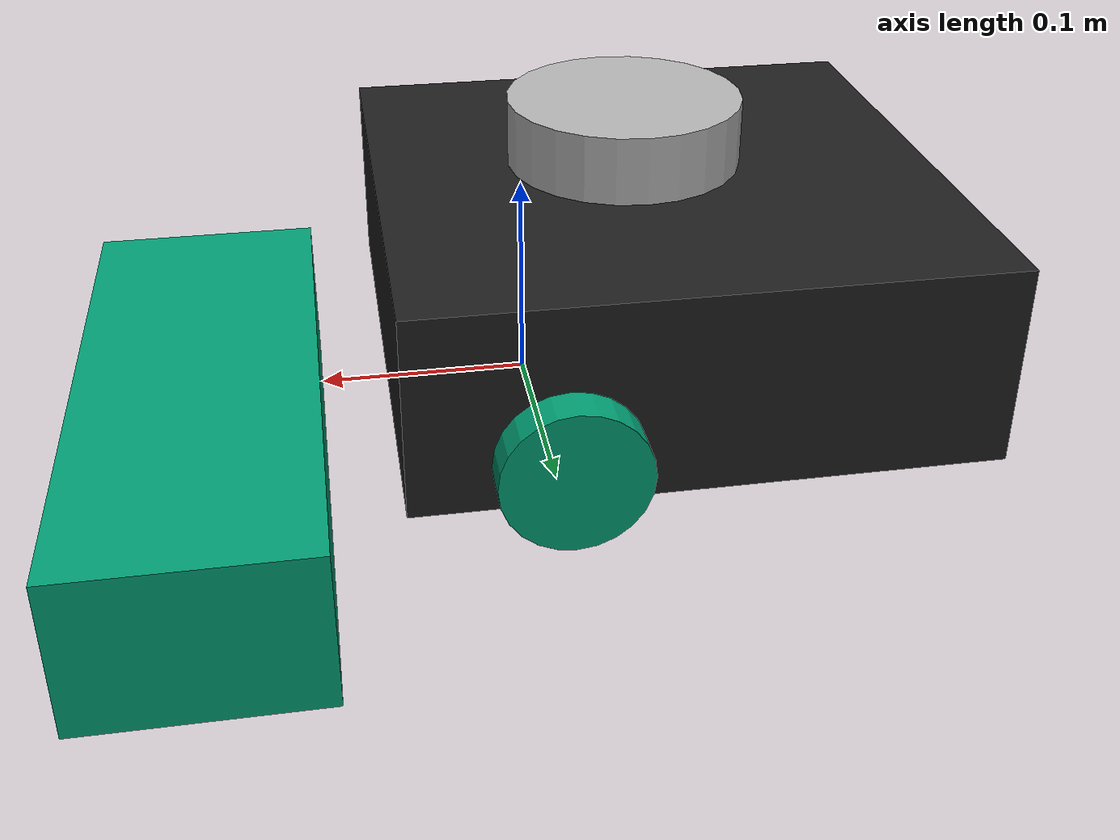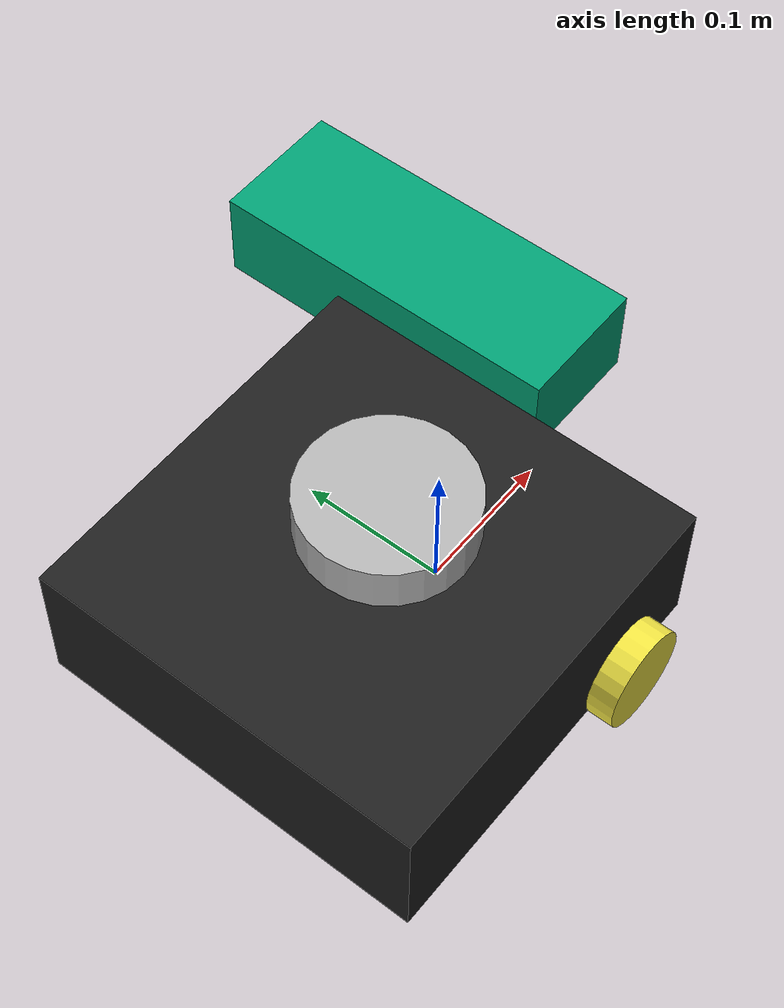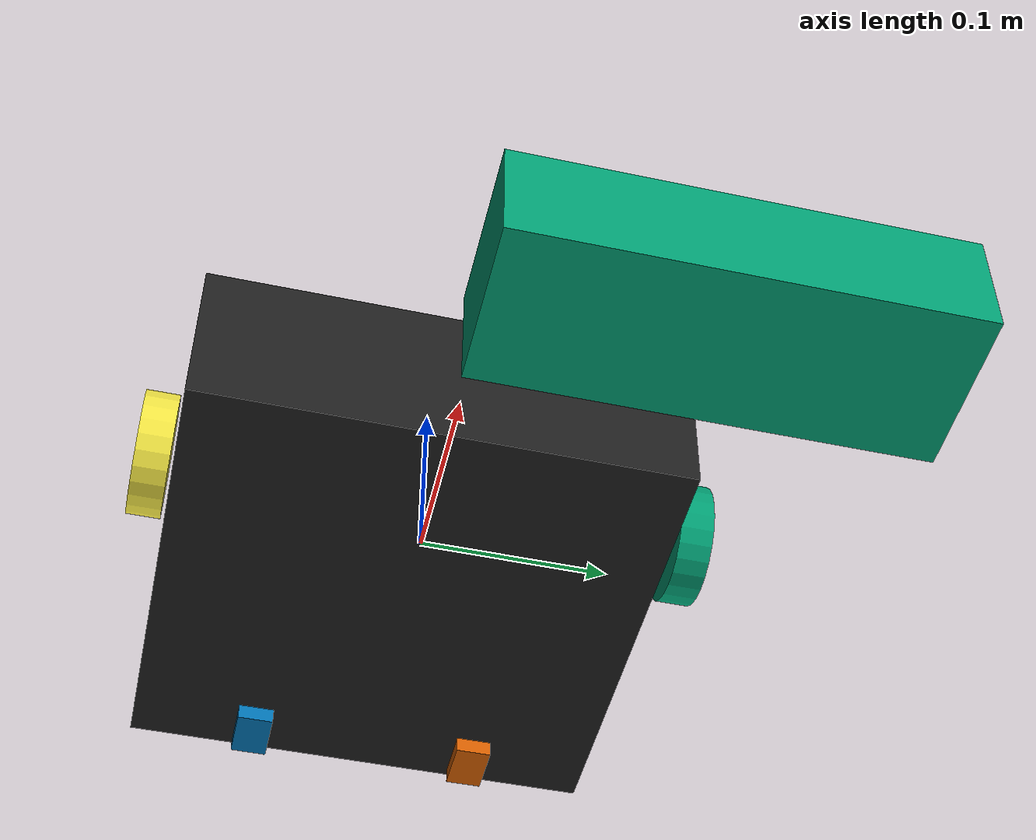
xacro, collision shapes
<?xml version="1.0" ?>
<robot name="turtlebot3_waffle_pi" xmlns:xacro="http://ros.org/wiki/xacro">
  <xacro:include filename="$(find turtlebot3_description)/urdf/common_properties.xacro"/>
  <xacro:include filename="$(find turtlebot3_description)/urdf/turtlebot3_waffle_pi.gazebo.xacro"/>

  <link name="base_footprint"/>

  <joint name="base_joint" type="fixed">
    <parent link="base_footprint"/>
    <child link="base_link" />
    <origin xyz="0 0 0.010" rpy="0 0 0"/>
  </joint>

  <link name="base_link">
    <visual>
      <origin xyz="-0.064 0 0.0" rpy="0 0 0"/>
      <geometry>
        <mesh filename="package://turtlebot3_description/meshes/bases/waffle_pi_base.stl" scale="0.001 0.001 0.001"/>
      </geometry>
      <material name="light_black"/>
    </visual>

    <collision>
      <origin xyz="-0.064 0 0.047" rpy="0 0 0"/>
      <geometry>
        <box size="0.266 0.266 0.094"/>
      </geometry>
    </collision>

    <inertial>
      <origin xyz="0 0 0" rpy="0 0 0"/>
      <mass value="1.3729096e+00"/>
      <inertia ixx="8.7002718e-03" ixy="-4.7576583e-05" ixz="1.1160499e-04"
               iyy="8.6195418e-03" iyz="-3.5422299e-06"
               izz="1.4612727e-02" />
    </inertial>
  </link>

  <joint name="wheel_left_joint" type="continuous">
    <parent link="base_link"/>
    <child link="wheel_left_link"/>
    <origin xyz="0.0 0.144 0.023" rpy="-1.57 0 0"/>
    <axis xyz="0 0 1"/>
  </joint>

  <link name="wheel_left_link">
    <visual>
      <origin xyz="0 0 0" rpy="1.57 0 0"/>
      <geometry>
        <mesh filename="package://turtlebot3_description/meshes/wheels/left_tire.stl" scale="0.001 0.001 0.001"/>
      </geometry>
      <material name="dark"/>
    </visual>

    <collision>
      <origin xyz="0 0 0" rpy="0 0 0"/>
      <geometry>
        <cylinder length="0.018" radius="0.033"/>
      </geometry>
    </collision>

    <inertial>
      <origin xyz="0 0 0" />
      <mass value="2.8498940e-02" />
      <inertia ixx="1.1175580e-05" ixy="-4.2369783e-11" ixz="-5.9381719e-09"
               iyy="1.1192413e-05" iyz="-1.4400107e-11"
               izz="2.0712558e-05" />
      </inertial>
  </link>

  <joint name="wheel_right_joint" type="continuous">
    <parent link="base_link"/>
    <child link="wheel_right_link"/>
    <origin xyz="0.0 -0.144 0.023" rpy="-1.57 0 0"/>
    <axis xyz="0 0 1"/>
  </joint>

  <link name="wheel_right_link">
    <visual>
      <origin xyz="0 0 0" rpy="1.57 0 0"/>
      <geometry>
        <mesh filename="package://turtlebot3_description/meshes/wheels/right_tire.stl" scale="0.001 0.001 0.001"/>
      </geometry>
      <material name="dark"/>
    </visual>

    <collision>
      <origin xyz="0 0 0" rpy="0 0 0"/>
      <geometry>
        <cylinder length="0.018" radius="0.033"/>
      </geometry>
    </collision>

    <inertial>
      <origin xyz="0 0 0" />
      <mass value="2.8498940e-02" />
      <inertia ixx="1.1175580e-05" ixy="-4.2369783e-11" ixz="-5.9381719e-09"
               iyy="1.1192413e-05" iyz="-1.4400107e-11"
               izz="2.0712558e-05" />
      </inertial>
  </link>

  <joint name="caster_back_right_joint" type="fixed">
    <parent link="base_link"/>
    <child link="caster_back_right_link"/>
    <origin xyz="-0.177 -0.064 -0.004" rpy="-1.57 0 0"/>
  </joint>

  <link name="caster_back_right_link">
    <collision>
      <origin xyz="0 0.001 0" rpy="0 0 0"/>
      <geometry>
        <box size="0.030 0.009 0.020"/>
      </geometry>
    </collision>

    <inertial>
      <origin xyz="0 0 0" />
      <mass value="0.005" />
      <inertia ixx="0.001" ixy="0.0" ixz="0.0"
               iyy="0.001" iyz="0.0"
               izz="0.001" />
    </inertial>
  </link>

  <joint name="caster_back_left_joint" type="fixed">
    <parent link="base_link"/>
    <child link="caster_back_left_link"/>
    <origin xyz="-0.177 0.064 -0.004" rpy="-1.57 0 0"/>
  </joint>

  <link name="caster_back_left_link">
    <collision>
      <origin xyz="0 0.001 0" rpy="0 0 0"/>
      <geometry>
        <box size="0.030 0.009 0.020"/>
      </geometry>
    </collision>

    <inertial>
      <origin xyz="0 0 0" />
      <mass value="0.005" />
      <inertia ixx="0.001" ixy="0.0" ixz="0.0"
               iyy="0.001" iyz="0.0"
               izz="0.001" />
    </inertial>
  </link>

  <joint name="imu_joint" type="fixed">
    <parent link="base_link"/>
    <child link="imu_link"/>
    <origin xyz="0.0 0 0.068" rpy="0 0 0"/>
  </joint>

  <link name="imu_link"/>

  <joint name="scan_joint" type="fixed">
    <parent link="base_link"/>
    <child link="base_scan"/>
    <origin xyz="-0.064 0 0.122" rpy="0 0 0"/>
  </joint>

  <link name="base_scan">
    <visual>
      <origin xyz="0 0 0.0" rpy="0 0 0"/>
      <geometry>
        <mesh filename="package://turtlebot3_description/meshes/sensors/lds.stl" scale="0.001 0.001 0.001"/>
      </geometry>
      <material name="dark"/>
    </visual>

    <collision>
      <origin xyz="0.015 0 -0.0065" rpy="0 0 0"/>
      <geometry>
        <cylinder length="0.0315" radius="0.055"/>
      </geometry>
    </collision>

    <inertial>
      <mass value="0.114" />
      <origin xyz="0 0 0" />
      <inertia ixx="0.001" ixy="0.0" ixz="0.0"
               iyy="0.001" iyz="0.0"
               izz="0.001" />
    </inertial>
  </link>

<!-- KINECT V2 -->
  <joint name="kinect_rgb_joint" type="fixed">
          <origin xyz="0.3 0 0.3" rpy="0 0 0" />
            <parent link="kinect_link"/>
            <child link="kinect_rgb_frame" />
      </joint>

      <link name="kinect_rgb_frame">
            <inertial>
                <mass value="0.001" />
                <origin xyz="0 0 0" />
                <inertia ixx="0.0001" ixy="0.0" ixz="0.0" iyy="0.0001" iyz="0.0" izz="0.0001" />
            </inertial>
      </link>

      <joint name="kinect_rgb_optical_joint" type="fixed">
            <origin xyz="0 0 0" rpy="-1.570796326795 0 -1.570796326795" />
            <parent link="kinect_rgb_frame" />
            <child link="kinect_rgb_optical_frame" />
      </joint>

      <link name="kinect_rgb_optical_frame">
            <inertial>
                <mass value="0.001" />
                <origin xyz="0 0 0" />
                <inertia ixx="0.0001" ixy="0.0" ixz="0.0" iyy="0.0001" iyz="0.0" izz="0.0001" />
            </inertial>
      </link>

      <joint name="kinect_joint" type="fixed">
          <origin xyz="0.1 0.0 0.01" rpy="0 0 0"/>
          <parent link="base_link"/>
          <child link="kinect_link"/>
      </joint>

      <link name="kinect_link">
            <visual>
                <origin xyz="0 0 0" rpy="0 0 1.570796326795"/>
                <geometry>
                          <mesh filename="package://model_robot/meshes/sensors/kinectv2.dae"/>
                </geometry>
            </visual>
            <collision>

                      <origin xyz="0.0471 0.125 0.03225" rpy="0 0 0"/>
                      <geometry>
                          <box size="0.0943 0.25 0.0645"/>
                      </geometry>

            </collision>
            <inertial>
                <mass value="0.001" />
                <origin xyz="0 0 0" />
                <inertia ixx="0.0001" ixy="0.0" ixz="0.0" iyy="0.0001" iyz="0.0" izz="0.0001" />
            </inertial>
      </link>

      <joint name="kinect_depth_joint" type="fixed">
            <origin xyz="0 0 0" rpy="0 0 0" />
            <parent link="kinect_link" />
            <child link="kinect_depth_frame" />
      </joint>

      <link name="kinect_depth_frame">
            <inertial>
                <mass value="0.001" />
                <origin xyz="0 0 0" />
                <inertia ixx="0.0001" ixy="0.0" ixz="0.0" iyy="0.0001" iyz="0.0" izz="0.0001" />
            </inertial>
      </link>

      <joint name="kinect_depth_optical_joint" type="fixed">
            <origin xyz="0 0 0" rpy="1.570796326795 0 1.570796326795" />
            <parent link="kinect_depth_frame" />
            <child link="kinect_depth_optical_frame" />
      </joint>
      <link name="kinect_depth_optical_frame">
            <inertial>
                <mass value="0.001" />
                <origin xyz="0 0 0" />
                <inertia ixx="0.0001" ixy="0.0" ixz="0.0" iyy="0.0001" iyz="0.0" izz="0.0001" />
            </inertial>
      </link>

      <!-- Kinect sensor for simulation -->

      <gazebo reference="kinect_link">
            <sensor type="depth" name="kinect_sensor">
                <always_on>true</always_on>
                <visualize>true</visualize>
                <update_rate>5.0</update_rate>

                <camera>
                      <horizontal_fov>1.047197551</horizontal_fov>
                      <image>
                          <format>R8G8B8</format>
                          <width>144</width>
                          <height>176</height>
                      </image>
                      <clip>
                          <near>0.05</near>
                          <far>8.0</far>
                      </clip>
                </camera>

                <plugin name="kinect_controller" filename="libgazebo_ros_openni_kinect.so">
                      <cameraName>kinect</cameraName>
                      <alwaysOn>true</alwaysOn>
                      <visualize>true</visualize>
                      <updateRate>10</updateRate>
                      <imageTopicName>rgb/image_raw</imageTopicName>
                      <depthImageTopicName>depth/image_raw</depthImageTopicName>
                      <pointCloudTopicName>depth/points</pointCloudTopicName>
                      <cameraInfoTopicName>rgb/camera_info</cameraInfoTopicName>
                      <depthImageCameraInfoTopicName>depth/camera_info</depthImageCameraInfoTopicName>
                      <frameName>base_link</frameName>
                      <baseline>0.1</baseline>
                      <distortion_k1>0.0</distortion_k1>
                      <distortion_k2>0.0</distortion_k2>
                      <distortion_k3>0.0</distortion_k3>
                      <distortion_t1>0.0</distortion_t1>
                      <distortion_t2>0.0</distortion_t2>
                      <pointCloudCutoff>0.4</pointCloudCutoff>
                      <pointCloudCutoffMax>5.0</pointCloudCutoffMax>
                </plugin>
            </sensor>
      </gazebo>
</robot>
